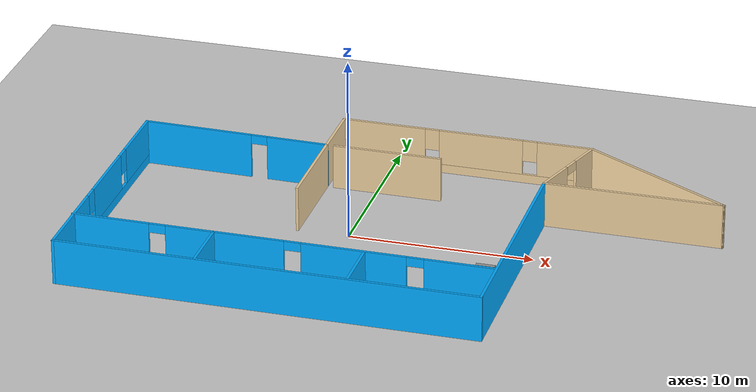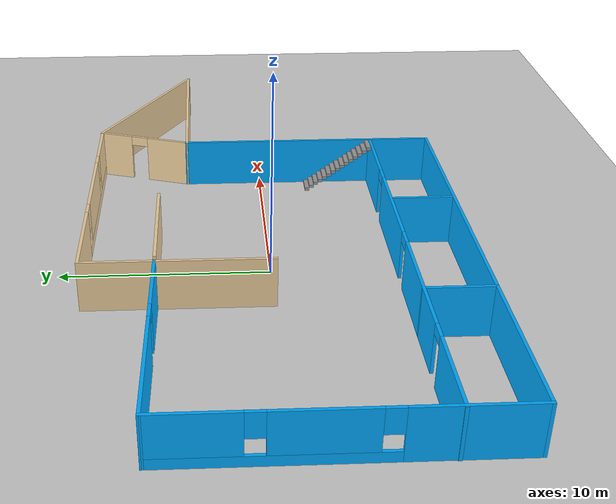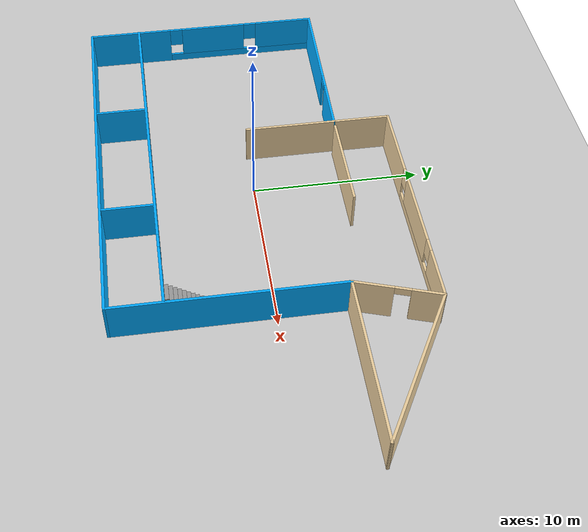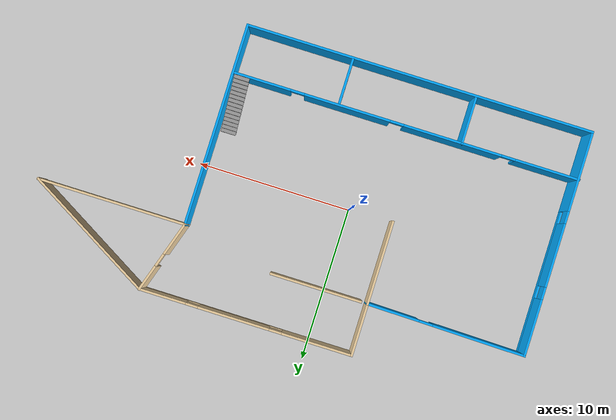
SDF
<sdf version="1.6">
 <world name="default">
  <model name="ground_plane">
   <static>1</static>
   <link name="link">
    <collision name="collision">
     <geometry><plane><normal>0 0 1</normal><size>100 100</size></plane></geometry>
     <surface><friction><ode><mu>100</mu><mu2>50</mu2></ode></friction></surface>
    </collision>
    <visual name="visual">
     <cast_shadows>0</cast_shadows>
     <geometry><plane><normal>0 0 1</normal><size>100 100</size></plane></geometry>
     <material>
      <script><uri>file://media/materials/scripts/gazebo.material</uri><name>Gazebo/Grey</name></script>
     </material>
    </visual>
   </link>
  </model>
  <model name="building">
   <pose>3.02885 -0.210627 0 0 -0 0</pose>
   <link name="Stairs_0">
    <visual name="Stairs_0_Visual_0">
     <pose>5.86893 -2.32318 0.083333 0 -0 0</pose>
     <geometry><box><size>1 0.233333 0.166667</size></box></geometry>
     <material>
      <script><uri>file://media/materials/scripts/gazebo.material</uri><name>Gazebo/Grey</name></script>
      <ambient>1 1 1 1</ambient>
     </material>
     <meta><layer>0</layer></meta>
    </visual>
    <collision name="Stairs_0_Collision_0">
     <geometry><box><size>1 0.233333 0.166667</size></box></geometry>
     <pose>5.86893 -2.32318 0.083333 0 -0 0</pose>
    </collision>
    <visual name="Stairs_0_Visual_1">
     <pose>5.86893 -2.55652 0.25 0 -0 0</pose>
     <geometry><box><size>1 0.233333 0.166667</size></box></geometry>
     <material>
      <script><uri>file://media/materials/scripts/gazebo.material</uri><name>Gazebo/Grey</name></script>
      <ambient>1 1 1 1</ambient>
     </material>
     <meta><layer>0</layer></meta>
    </visual>
    <collision name="Stairs_0_Collision_1">
     <geometry><box><size>1 0.233333 0.166667</size></box></geometry>
     <pose>5.86893 -2.55652 0.25 0 -0 0</pose>
    </collision>
    <visual name="Stairs_0_Visual_2">
     <pose>5.86893 -2.78985 0.416667 0 -0 0</pose>
     <geometry><box><size>1 0.233333 0.166667</size></box></geometry>
     <material>
      <script><uri>file://media/materials/scripts/gazebo.material</uri><name>Gazebo/Grey</name></script>
      <ambient>1 1 1 1</ambient>
     </material>
     <meta><layer>0</layer></meta>
    </visual>
    <collision name="Stairs_0_Collision_2">
     <geometry><box><size>1 0.233333 0.166667</size></box></geometry>
     <pose>5.86893 -2.78985 0.416667 0 -0 0</pose>
    </collision>
    <visual name="Stairs_0_Visual_3">
     <pose>5.86893 -3.02318 0.583333 0 -0 0</pose>
     <geometry><box><size>1 0.233333 0.166667</size></box></geometry>
     <material>
      <script><uri>file://media/materials/scripts/gazebo.material</uri><name>Gazebo/Grey</name></script>
      <ambient>1 1 1 1</ambient>
     </material>
     <meta><layer>0</layer></meta>
    </visual>
    <collision name="Stairs_0_Collision_3">
     <geometry><box><size>1 0.233333 0.166667</size></box></geometry>
     <pose>5.86893 -3.02318 0.583333 0 -0 0</pose>
    </collision>
    <visual name="Stairs_0_Visual_4">
     <pose>5.86893 -3.25652 0.75 0 -0 0</pose>
     <geometry><box><size>1 0.233333 0.166667</size></box></geometry>
     <material>
      <script><uri>file://media/materials/scripts/gazebo.material</uri><name>Gazebo/Grey</name></script>
      <ambient>1 1 1 1</ambient>
     </material>
     <meta><layer>0</layer></meta>
    </visual>
    <collision name="Stairs_0_Collision_4">
     <geometry><box><size>1 0.233333 0.166667</size></box></geometry>
     <pose>5.86893 -3.25652 0.75 0 -0 0</pose>
    </collision>
    <visual name="Stairs_0_Visual_5">
     <pose>5.86893 -3.48985 0.916667 0 -0 0</pose>
     <geometry><box><size>1 0.233333 0.166667</size></box></geometry>
     <material>
      <script><uri>file://media/materials/scripts/gazebo.material</uri><name>Gazebo/Grey</name></script>
      <ambient>1 1 1 1</ambient>
     </material>
     <meta><layer>0</layer></meta>
    </visual>
    <collision name="Stairs_0_Collision_5">
     <geometry><box><size>1 0.233333 0.166667</size></box></geometry>
     <pose>5.86893 -3.48985 0.916667 0 -0 0</pose>
    </collision>
    <visual name="Stairs_0_Visual_6">
     <pose>5.86893 -3.72318 1.08333 0 -0 0</pose>
     <geometry><box><size>1 0.233333 0.166667</size></box></geometry>
     <material>
      <script><uri>file://media/materials/scripts/gazebo.material</uri><name>Gazebo/Grey</name></script>
      <ambient>1 1 1 1</ambient>
     </material>
     <meta><layer>0</layer></meta>
    </visual>
    <collision name="Stairs_0_Collision_6">
     <geometry><box><size>1 0.233333 0.166667</size></box></geometry>
     <pose>5.86893 -3.72318 1.08333 0 -0 0</pose>
    </collision>
    <visual name="Stairs_0_Visual_7">
     <pose>5.86893 -3.95652 1.25 0 -0 0</pose>
     <geometry><box><size>1 0.233333 0.166667</size></box></geometry>
     <material>
      <script><uri>file://media/materials/scripts/gazebo.material</uri><name>Gazebo/Grey</name></script>
      <ambient>1 1 1 1</ambient>
     </material>
     <meta><layer>0</layer></meta>
    </visual>
    <collision name="Stairs_0_Collision_7">
     <geometry><box><size>1 0.233333 0.166667</size></box></geometry>
     <pose>5.86893 -3.95652 1.25 0 -0 0</pose>
    </collision>
    <visual name="Stairs_0_Visual_8">
     <pose>5.86893 -4.18985 1.41667 0 -0 0</pose>
     <geometry><box><size>1 0.233333 0.166667</size></box></geometry>
     <material>
      <script><uri>file://media/materials/scripts/gazebo.material</uri><name>Gazebo/Grey</name></script>
      <ambient>1 1 1 1</ambient>
     </material>
     <meta><layer>0</layer></meta>
    </visual>
    <collision name="Stairs_0_Collision_8">
     <geometry><box><size>1 0.233333 0.166667</size></box></geometry>
     <pose>5.86893 -4.18985 1.41667 0 -0 0</pose>
    </collision>
    <visual name="Stairs_0_Visual_9">
     <pose>5.86893 -4.42318 1.58333 0 -0 0</pose>
     <geometry><box><size>1 0.233333 0.166667</size></box></geometry>
     <material>
      <script><uri>file://media/materials/scripts/gazebo.material</uri><name>Gazebo/Grey</name></script>
      <ambient>1 1 1 1</ambient>
     </material>
     <meta><layer>0</layer></meta>
    </visual>
    <collision name="Stairs_0_Collision_9">
     <geometry><box><size>1 0.233333 0.166667</size></box></geometry>
     <pose>5.86893 -4.42318 1.58333 0 -0 0</pose>
    </collision>
    <visual name="Stairs_0_Visual_10">
     <pose>5.86893 -4.65652 1.75 0 -0 0</pose>
     <geometry><box><size>1 0.233333 0.166667</size></box></geometry>
     <material>
      <script><uri>file://media/materials/scripts/gazebo.material</uri><name>Gazebo/Grey</name></script>
      <ambient>1 1 1 1</ambient>
     </material>
     <meta><layer>0</layer></meta>
    </visual>
    <collision name="Stairs_0_Collision_10">
     <geometry><box><size>1 0.233333 0.166667</size></box></geometry>
     <pose>5.86893 -4.65652 1.75 0 -0 0</pose>
    </collision>
    <visual name="Stairs_0_Visual_11">
     <pose>5.86893 -4.88985 1.91667 0 -0 0</pose>
     <geometry><box><size>1 0.233333 0.166667</size></box></geometry>
     <material>
      <script><uri>file://media/materials/scripts/gazebo.material</uri><name>Gazebo/Grey</name></script>
      <ambient>1 1 1 1</ambient>
     </material>
     <meta><layer>0</layer></meta>
    </visual>
    <collision name="Stairs_0_Collision_11">
     <geometry><box><size>1 0.233333 0.166667</size></box></geometry>
     <pose>5.86893 -4.88985 1.91667 0 -0 0</pose>
    </collision>
    <visual name="Stairs_0_Visual_12">
     <pose>5.86893 -5.12318 2.08333 0 -0 0</pose>
     <geometry><box><size>1 0.233333 0.166667</size></box></geometry>
     <material>
      <script><uri>file://media/materials/scripts/gazebo.material</uri><name>Gazebo/Grey</name></script>
      <ambient>1 1 1 1</ambient>
     </material>
     <meta><layer>0</layer></meta>
    </visual>
    <collision name="Stairs_0_Collision_12">
     <geometry><box><size>1 0.233333 0.166667</size></box></geometry>
     <pose>5.86893 -5.12318 2.08333 0 -0 0</pose>
    </collision>
    <visual name="Stairs_0_Visual_13">
     <pose>5.86893 -5.35652 2.25 0 -0 0</pose>
     <geometry><box><size>1 0.233333 0.166667</size></box></geometry>
     <material>
      <script><uri>file://media/materials/scripts/gazebo.material</uri><name>Gazebo/Grey</name></script>
      <ambient>1 1 1 1</ambient>
     </material>
     <meta><layer>0</layer></meta>
    </visual>
    <collision name="Stairs_0_Collision_13">
     <geometry><box><size>1 0.233333 0.166667</size></box></geometry>
     <pose>5.86893 -5.35652 2.25 0 -0 0</pose>
    </collision>
    <visual name="Stairs_0_Visual_14">
     <pose>5.86893 -5.58985 2.41667 0 -0 0</pose>
     <geometry><box><size>1 0.233333 0.166667</size></box></geometry>
     <material>
      <script><uri>file://media/materials/scripts/gazebo.material</uri><name>Gazebo/Grey</name></script>
      <ambient>1 1 1 1</ambient>
     </material>
     <meta><layer>0</layer></meta>
    </visual>
    <collision name="Stairs_0_Collision_14">
     <geometry><box><size>1 0.233333 0.166667</size></box></geometry>
     <pose>5.86893 -5.58985 2.41667 0 -0 0</pose>
    </collision>
   </link>
   <link name="Wall_0">
    <collision name="Wall_0_Collision">
     <geometry><box><size>3.5 0.15 2.5</size></box></geometry>
     <pose>0 0 1.25 0 -0 0</pose>
    </collision>
    <visual name="Wall_0_Visual">
     <pose>0 0 1.25 0 -0 0</pose>
     <geometry><box><size>3.5 0.15 2.5</size></box></geometry>
     <material>
      <script><uri>file://media/materials/scripts/gazebo.material</uri><name>Gazebo/Grey</name></script>
      <ambient>0.921569 0.807843 0.615686 1</ambient>
     </material>
     <meta><layer>0</layer></meta>
    </visual>
    <pose>-5.83827 7.19877 0 0 -0 1.5708</pose>
   </link>
   <link name="Wall_1">
    <pose>1.08673 8.87377 0 0 -0 0</pose>
    <visual name="Wall_1_Visual_0">
     <pose>-4.66986 0 1.25 0 -0 0</pose>
     <geometry><box><size>4.66028 0.15 2.5</size></box></geometry>
     <material>
      <script><uri>file://media/materials/scripts/gazebo.material</uri><name>Gazebo/Grey</name></script>
      <ambient>0.921569 0.807843 0.615686 1</ambient>
     </material>
     <meta><layer>0</layer></meta>
    </visual>
    <collision name="Wall_1_Collision_0">
     <geometry><box><size>4.66028 0.15 2.5</size></box></geometry>
     <pose>-4.66986 0 1.25 0 -0 0</pose>
    </collision>
    <visual name="Wall_1_Visual_1">
     <pose>2.33014 0 0.25 0 -0 0</pose>
     <geometry><box><size>9.33972 0.15 0.5</size></box></geometry>
     <material>
      <script><uri>file://media/materials/scripts/gazebo.material</uri><name>Gazebo/Grey</name></script>
      <ambient>0.921569 0.807843 0.615686 1</ambient>
     </material>
     <meta><layer>0</layer></meta>
    </visual>
    <collision name="Wall_1_Collision_1">
     <geometry><box><size>9.33972 0.15 0.5</size></box></geometry>
     <pose>2.33014 0 0.25 0 -0 0</pose>
    </collision>
    <visual name="Wall_1_Visual_2">
     <pose>0.784421 0 1.5 0 -0 0</pose>
     <geometry><box><size>4.64829 0.15 2</size></box></geometry>
     <material>
      <script><uri>file://media/materials/scripts/gazebo.material</uri><name>Gazebo/Grey</name></script>
      <ambient>0.921569 0.807843 0.615686 1</ambient>
     </material>
     <meta><layer>0</layer></meta>
    </visual>
    <collision name="Wall_1_Collision_2">
     <geometry><box><size>4.64829 0.15 2</size></box></geometry>
     <pose>0.784421 0 1.5 0 -0 0</pose>
    </collision>
    <visual name="Wall_1_Visual_3">
     <pose>5.45428 0 1.5 0 -0 0</pose>
     <geometry><box><size>3.09143 0.15 2</size></box></geometry>
     <material>
      <script><uri>file://media/materials/scripts/gazebo.material</uri><name>Gazebo/Grey</name></script>
      <ambient>0.921569 0.807843 0.615686 1</ambient>
     </material>
     <meta><layer>0</layer></meta>
    </visual>
    <collision name="Wall_1_Collision_3">
     <geometry><box><size>3.09143 0.15 2</size></box></geometry>
     <pose>5.45428 0 1.5 0 -0 0</pose>
    </collision>
    <visual name="Wall_1_Visual_4">
     <pose>-1.93972 0 1.9 0 -0 0</pose>
     <geometry><box><size>0.8 0.15 1.2</size></box></geometry>
     <material>
      <script><uri>file://media/materials/scripts/gazebo.material</uri><name>Gazebo/Grey</name></script>
      <ambient>0.921569 0.807843 0.615686 1</ambient>
     </material>
     <meta><layer>0</layer></meta>
    </visual>
    <collision name="Wall_1_Collision_4">
     <geometry><box><size>0.8 0.15 1.2</size></box></geometry>
     <pose>-1.93972 0 1.9 0 -0 0</pose>
    </collision>
    <visual name="Wall_1_Visual_5">
     <pose>3.50857 0 1.9 0 -0 0</pose>
     <geometry><box><size>0.8 0.15 1.2</size></box></geometry>
     <material>
      <script><uri>file://media/materials/scripts/gazebo.material</uri><name>Gazebo/Grey</name></script>
      <ambient>0.921569 0.807843 0.615686 1</ambient>
     </material>
     <meta><layer>0</layer></meta>
    </visual>
    <collision name="Wall_1_Collision_5">
     <geometry><box><size>0.8 0.15 1.2</size></box></geometry>
     <pose>3.50857 0 1.9 0 -0 0</pose>
    </collision>
   </link>
   <link name="Wall_11">
    <pose>-16.0909 -1.60123 0 0 -0 1.5708</pose>
    <visual name="Wall_11_Visual_0">
     <pose>-4.74674 0 1.25 0 -0 0</pose>
     <geometry><box><size>5.25652 0.15 2.5</size></box></geometry>
     <material>
      <script><uri>file://media/materials/scripts/gazebo.material</uri><name>Gazebo/Grey</name></script>
      <ambient>0 0.666667 1 1</ambient>
     </material>
     <meta><layer>0</layer></meta>
    </visual>
    <collision name="Wall_11_Collision_0">
     <geometry><box><size>5.25652 0.15 2.5</size></box></geometry>
     <pose>-4.74674 0 1.25 0 -0 0</pose>
    </collision>
    <visual name="Wall_11_Visual_1">
     <pose>2.62826 0 0.25 0 -0 0</pose>
     <geometry><box><size>9.49348 0.15 0.5</size></box></geometry>
     <material>
      <script><uri>file://media/materials/scripts/gazebo.material</uri><name>Gazebo/Grey</name></script>
      <ambient>0 0.666667 1 1</ambient>
     </material>
     <meta><layer>0</layer></meta>
    </visual>
    <collision name="Wall_11_Collision_1">
     <geometry><box><size>9.49348 0.15 0.5</size></box></geometry>
     <pose>2.62826 0 0.25 0 -0 0</pose>
    </collision>
    <visual name="Wall_11_Visual_2">
     <pose>0.75802 0 1.5 0 -0 0</pose>
     <geometry><box><size>4.15299 0.15 2</size></box></geometry>
     <material>
      <script><uri>file://media/materials/scripts/gazebo.material</uri><name>Gazebo/Grey</name></script>
      <ambient>0 0.666667 1 1</ambient>
     </material>
     <meta><layer>0</layer></meta>
    </visual>
    <collision name="Wall_11_Collision_2">
     <geometry><box><size>4.15299 0.15 2</size></box></geometry>
     <pose>0.75802 0 1.5 0 -0 0</pose>
    </collision>
    <visual name="Wall_11_Visual_3">
     <pose>5.50476 0 1.5 0 -0 0</pose>
     <geometry><box><size>3.74048 0.15 2</size></box></geometry>
     <material>
      <script><uri>file://media/materials/scripts/gazebo.material</uri><name>Gazebo/Grey</name></script>
      <ambient>0 0.666667 1 1</ambient>
     </material>
     <meta><layer>0</layer></meta>
    </visual>
    <collision name="Wall_11_Collision_3">
     <geometry><box><size>3.74048 0.15 2</size></box></geometry>
     <pose>5.50476 0 1.5 0 -0 0</pose>
    </collision>
    <visual name="Wall_11_Visual_4">
     <pose>-1.71848 0 1.9 0 -0 0</pose>
     <geometry><box><size>0.8 0.15 1.2</size></box></geometry>
     <material>
      <script><uri>file://media/materials/scripts/gazebo.material</uri><name>Gazebo/Grey</name></script>
      <ambient>0 0.666667 1 1</ambient>
     </material>
     <meta><layer>0</layer></meta>
    </visual>
    <collision name="Wall_11_Collision_4">
     <geometry><box><size>0.8 0.15 1.2</size></box></geometry>
     <pose>-1.71848 0 1.9 0 -0 0</pose>
    </collision>
    <visual name="Wall_11_Visual_5">
     <pose>3.23452 0 1.9 0 -0 0</pose>
     <geometry><box><size>0.8 0.15 1.2</size></box></geometry>
     <material>
      <script><uri>file://media/materials/scripts/gazebo.material</uri><name>Gazebo/Grey</name></script>
      <ambient>0 0.666667 1 1</ambient>
     </material>
     <meta><layer>0</layer></meta>
    </visual>
    <collision name="Wall_11_Collision_5">
     <geometry><box><size>0.8 0.15 1.2</size></box></geometry>
     <pose>3.23452 0 1.9 0 -0 0</pose>
    </collision>
   </link>
   <link name="Wall_12">
    <pose>-10.9646 5.61127 0 0 0 -0.017067</pose>
    <visual name="Wall_12_Visual_0">
     <pose>-2.16739 0 1.25 0 -0 0</pose>
     <geometry><box><size>6.06937 0.15 2.5</size></box></geometry>
     <material>
      <script><uri>file://media/materials/scripts/gazebo.material</uri><name>Gazebo/Grey</name></script>
      <ambient>0 0.666667 1 1</ambient>
     </material>
     <meta><layer>0</layer></meta>
    </visual>
    <collision name="Wall_12_Collision_0">
     <geometry><box><size>6.06937 0.15 2.5</size></box></geometry>
     <pose>-2.16739 0 1.25 0 -0 0</pose>
    </collision>
    <visual name="Wall_12_Visual_1">
     <pose>3.48468 0 1.25 0 -0 0</pose>
     <geometry><box><size>3.43479 0.15 2.5</size></box></geometry>
     <material>
      <script><uri>file://media/materials/scripts/gazebo.material</uri><name>Gazebo/Grey</name></script>
      <ambient>0 0.666667 1 1</ambient>
     </material>
     <meta><layer>0</layer></meta>
    </visual>
    <collision name="Wall_12_Collision_1">
     <geometry><box><size>3.43479 0.15 2.5</size></box></geometry>
     <pose>3.48468 0 1.25 0 -0 0</pose>
    </collision>
    <visual name="Wall_12_Visual_2">
     <pose>1.31729 0 2.25 0 -0 0</pose>
     <geometry><box><size>0.9 0.15 0.5</size></box></geometry>
     <material>
      <script><uri>file://media/materials/scripts/gazebo.material</uri><name>Gazebo/Grey</name></script>
      <ambient>0 0.666667 1 1</ambient>
     </material>
     <meta><layer>0</layer></meta>
    </visual>
    <collision name="Wall_12_Collision_2">
     <geometry><box><size>0.9 0.15 0.5</size></box></geometry>
     <pose>1.31729 0 2.25 0 -0 0</pose>
    </collision>
   </link>
   <link name="Wall_18">
    <pose>-4.83652 -5.7962 0 0 -0 0</pose>
    <visual name="Wall_18_Visual_0">
     <pose>-9.2629 0 1.25 0 -0 0</pose>
     <geometry><box><size>4.22421 0.15 2.5</size></box></geometry>
     <material>
      <script><uri>file://media/materials/scripts/gazebo.material</uri><name>Gazebo/Grey</name></script>
      <ambient>0 0.666667 1 1</ambient>
     </material>
     <meta><layer>0</layer></meta>
    </visual>
    <collision name="Wall_18_Collision_0">
     <geometry><box><size>4.22421 0.15 2.5</size></box></geometry>
     <pose>-9.2629 0 1.25 0 -0 0</pose>
    </collision>
    <visual name="Wall_18_Visual_1">
     <pose>-3.0568 0 1.25 0 -0 0</pose>
     <geometry><box><size>6.38798 0.15 2.5</size></box></geometry>
     <material>
      <script><uri>file://media/materials/scripts/gazebo.material</uri><name>Gazebo/Grey</name></script>
      <ambient>0 0.666667 1 1</ambient>
     </material>
     <meta><layer>0</layer></meta>
    </visual>
    <collision name="Wall_18_Collision_1">
     <geometry><box><size>6.38798 0.15 2.5</size></box></geometry>
     <pose>-3.0568 0 1.25 0 -0 0</pose>
    </collision>
    <visual name="Wall_18_Visual_2">
     <pose>3.84201 0 1.25 0 -0 0</pose>
     <geometry><box><size>5.60965 0.15 2.5</size></box></geometry>
     <material>
      <script><uri>file://media/materials/scripts/gazebo.material</uri><name>Gazebo/Grey</name></script>
      <ambient>0 0.666667 1 1</ambient>
     </material>
     <meta><layer>0</layer></meta>
    </visual>
    <collision name="Wall_18_Collision_2">
     <geometry><box><size>5.60965 0.15 2.5</size></box></geometry>
     <pose>3.84201 0 1.25 0 -0 0</pose>
    </collision>
    <visual name="Wall_18_Visual_3">
     <pose>9.46092 0 1.25 0 -0 0</pose>
     <geometry><box><size>3.82816 0.15 2.5</size></box></geometry>
     <material>
      <script><uri>file://media/materials/scripts/gazebo.material</uri><name>Gazebo/Grey</name></script>
      <ambient>0 0.666667 1 1</ambient>
     </material>
     <meta><layer>0</layer></meta>
    </visual>
    <collision name="Wall_18_Collision_3">
     <geometry><box><size>3.82816 0.15 2.5</size></box></geometry>
     <pose>9.46092 0 1.25 0 -0 0</pose>
    </collision>
    <visual name="Wall_18_Visual_4">
     <pose>-6.70079 0 2.25 0 -0 0</pose>
     <geometry><box><size>0.9 0.15 0.5</size></box></geometry>
     <material>
      <script><uri>file://media/materials/scripts/gazebo.material</uri><name>Gazebo/Grey</name></script>
      <ambient>0 0.666667 1 1</ambient>
     </material>
     <meta><layer>0</layer></meta>
    </visual>
    <collision name="Wall_18_Collision_4">
     <geometry><box><size>0.9 0.15 0.5</size></box></geometry>
     <pose>-6.70079 0 2.25 0 -0 0</pose>
    </collision>
    <visual name="Wall_18_Visual_5">
     <pose>0.587186 0 2.25 0 -0 0</pose>
     <geometry><box><size>0.9 0.15 0.5</size></box></geometry>
     <material>
      <script><uri>file://media/materials/scripts/gazebo.material</uri><name>Gazebo/Grey</name></script>
      <ambient>0 0.666667 1 1</ambient>
     </material>
     <meta><layer>0</layer></meta>
    </visual>
    <collision name="Wall_18_Collision_5">
     <geometry><box><size>0.9 0.15 0.5</size></box></geometry>
     <pose>0.587186 0 2.25 0 -0 0</pose>
    </collision>
    <visual name="Wall_18_Visual_6">
     <pose>7.09683 0 2.25 0 -0 0</pose>
     <geometry><box><size>0.9 0.15 0.5</size></box></geometry>
     <material>
      <script><uri>file://media/materials/scripts/gazebo.material</uri><name>Gazebo/Grey</name></script>
      <ambient>0 0.666667 1 1</ambient>
     </material>
     <meta><layer>0</layer></meta>
    </visual>
    <collision name="Wall_18_Collision_6">
     <geometry><box><size>0.9 0.15 0.5</size></box></geometry>
     <pose>7.09683 0 2.25 0 -0 0</pose>
    </collision>
   </link>
   <link name="Wall_20">
    <collision name="Wall_20_Collision">
     <geometry><box><size>3.25 0.15 2.5</size></box></geometry>
     <pose>0 0 1.25 0 -0 0</pose>
    </collision>
    <visual name="Wall_20_Visual">
     <pose>0 0 1.25 0 -0 0</pose>
     <geometry><box><size>3.25 0.15 2.5</size></box></geometry>
     <material>
      <script><uri>file://media/materials/scripts/gazebo.material</uri><name>Gazebo/Grey</name></script>
      <ambient>0 0.666667 1 1</ambient>
     </material>
     <meta><layer>0</layer></meta>
    </visual>
    <pose>-8.49476 -7.3462 0 0 0 -1.5708</pose>
   </link>
   <link name="Wall_22">
    <collision name="Wall_22_Collision">
     <geometry><box><size>3 0.15 2.5</size></box></geometry>
     <pose>0 0 1.25 0 -0 0</pose>
    </collision>
    <visual name="Wall_22_Visual">
     <pose>0 0 1.25 0 -0 0</pose>
     <geometry><box><size>3 0.15 2.5</size></box></geometry>
     <material>
      <script><uri>file://media/materials/scripts/gazebo.material</uri><name>Gazebo/Grey</name></script>
      <ambient>0 0.666667 1 1</ambient>
     </material>
     <meta><layer>0</layer></meta>
    </visual>
    <pose>-0.428452 -7.36271 0 0 0 -1.5708</pose>
   </link>
   <link name="Wall_24">
    <pose>7.2604 6.53627 0 0 0 -1.88179</pose>
    <visual name="Wall_24_Visual_0">
     <pose>-1.61861 0 1.25 0 -0 0</pose>
     <geometry><box><size>1.82334 0.15 2.5</size></box></geometry>
     <material>
      <script><uri>file://media/materials/scripts/gazebo.material</uri><name>Gazebo/Grey</name></script>
      <ambient>0.921569 0.807843 0.615686 1</ambient>
     </material>
     <meta><layer>0</layer></meta>
    </visual>
    <collision name="Wall_24_Collision_0">
     <geometry><box><size>1.82334 0.15 2.5</size></box></geometry>
     <pose>-1.61861 0 1.25 0 -0 0</pose>
    </collision>
    <visual name="Wall_24_Visual_1">
     <pose>1.36167 0 1.25 0 -0 0</pose>
     <geometry><box><size>2.33722 0.15 2.5</size></box></geometry>
     <material>
      <script><uri>file://media/materials/scripts/gazebo.material</uri><name>Gazebo/Grey</name></script>
      <ambient>0.921569 0.807843 0.615686 1</ambient>
     </material>
     <meta><layer>0</layer></meta>
    </visual>
    <collision name="Wall_24_Collision_1">
     <geometry><box><size>2.33722 0.15 2.5</size></box></geometry>
     <pose>1.36167 0 1.25 0 -0 0</pose>
    </collision>
    <visual name="Wall_24_Visual_2">
     <pose>-0.256943 0 2.25 0 -0 0</pose>
     <geometry><box><size>0.9 0.15 0.5</size></box></geometry>
     <material>
      <script><uri>file://media/materials/scripts/gazebo.material</uri><name>Gazebo/Grey</name></script>
      <ambient>0.921569 0.807843 0.615686 1</ambient>
     </material>
     <meta><layer>0</layer></meta>
    </visual>
    <collision name="Wall_24_Collision_2">
     <geometry><box><size>0.9 0.15 0.5</size></box></geometry>
     <pose>-0.256943 0 2.25 0 -0 0</pose>
    </collision>
   </link>
   <link name="Wall_26">
    <collision name="Wall_26_Collision">
     <geometry><box><size>5.5 0.15 2.5</size></box></geometry>
     <pose>0 0 1.25 0 -0 0</pose>
    </collision>
    <visual name="Wall_26_Visual">
     <pose>0 0 1.25 0 -0 0</pose>
     <geometry><box><size>5.5 0.15 2.5</size></box></geometry>
     <material>
      <script><uri>file://media/materials/scripts/gazebo.material</uri><name>Gazebo/Grey</name></script>
      <ambient>0.921569 0.807843 0.615686 1</ambient>
     </material>
     <meta><layer>0</layer></meta>
    </visual>
    <pose>-5.83827 2.84877 0 0 0 -1.5708</pose>
   </link>
   <link name="Wall_28">
    <collision name="Wall_28_Collision">
     <geometry><box><size>6 0.15 2.5</size></box></geometry>
     <pose>0 0 1.25 0 -0 0</pose>
    </collision>
    <visual name="Wall_28_Visual">
     <pose>0 0 1.25 0 -0 0</pose>
     <geometry><box><size>6 0.15 2.5</size></box></geometry>
     <material>
      <script><uri>file://media/materials/scripts/gazebo.material</uri><name>Gazebo/Grey</name></script>
      <ambient>0.921569 0.807843 0.615686 1</ambient>
     </material>
     <meta><layer>0</layer></meta>
    </visual>
    <pose>-2.45645 5.52493 0 0 -0 0</pose>
   </link>
   <link name="Wall_5">
    <collision name="Wall_5_Collision">
     <geometry><box><size>9.5 0.15 2.5</size></box></geometry>
     <pose>0 0 1.25 0 -0 0</pose>
    </collision>
    <visual name="Wall_5_Visual">
     <pose>0 0 1.25 0 -0 0</pose>
     <geometry><box><size>9.5 0.15 2.5</size></box></geometry>
     <material>
      <script><uri>file://media/materials/scripts/gazebo.material</uri><name>Gazebo/Grey</name></script>
      <ambient>0.921569 0.807843 0.615686 1</ambient>
     </material>
     <meta><layer>0</layer></meta>
    </visual>
    <pose>12.0604 6.53627 0 0 0 -0.523599</pose>
   </link>
   <link name="Wall_6">
    <collision name="Wall_6_Collision">
     <geometry><box><size>9.75 0.15 2.5</size></box></geometry>
     <pose>0 0 1.25 0 -0 0</pose>
    </collision>
    <visual name="Wall_6_Visual">
     <pose>0 0 1.25 0 -0 0</pose>
     <geometry><box><size>9.75 0.15 2.5</size></box></geometry>
     <material>
      <script><uri>file://media/materials/scripts/gazebo.material</uri><name>Gazebo/Grey</name></script>
      <ambient>0.921569 0.807843 0.615686 1</ambient>
     </material>
     <meta><layer>0</layer></meta>
    </visual>
    <pose>11.3091 4.19877 0 0 -0 3.14159</pose>
   </link>
   <link name="Wall_7">
    <collision name="Wall_7_Collision">
     <geometry><box><size>13.25 0.15 2.5</size></box></geometry>
     <pose>0 0 1.25 0 -0 0</pose>
    </collision>
    <visual name="Wall_7_Visual">
     <pose>0 0 1.25 0 -0 0</pose>
     <geometry><box><size>13.25 0.15 2.5</size></box></geometry>
     <material>
      <script><uri>file://media/materials/scripts/gazebo.material</uri><name>Gazebo/Grey</name></script>
      <ambient>0 0.666667 1 1</ambient>
     </material>
     <meta><layer>0</layer></meta>
    </visual>
    <pose>6.50907 -2.35123 0 0 0 -1.5708</pose>
   </link>
   <link name="Wall_8">
    <collision name="Wall_8_Collision">
     <geometry><box><size>22.75 0.15 2.5</size></box></geometry>
     <pose>0 0 1.25 0 -0 0</pose>
    </collision>
    <visual name="Wall_8_Visual">
     <pose>0 0 1.25 0 -0 0</pose>
     <geometry><box><size>22.75 0.15 2.5</size></box></geometry>
     <material>
      <script><uri>file://media/materials/scripts/gazebo.material</uri><name>Gazebo/Grey</name></script>
      <ambient>0 0.666667 1 1</ambient>
     </material>
     <meta><layer>0</layer></meta>
    </visual>
    <pose>-4.79093 -8.90123 0 0 -0 3.14159</pose>
   </link>
   <static>1</static>
  </model>
 </world>
</sdf>
